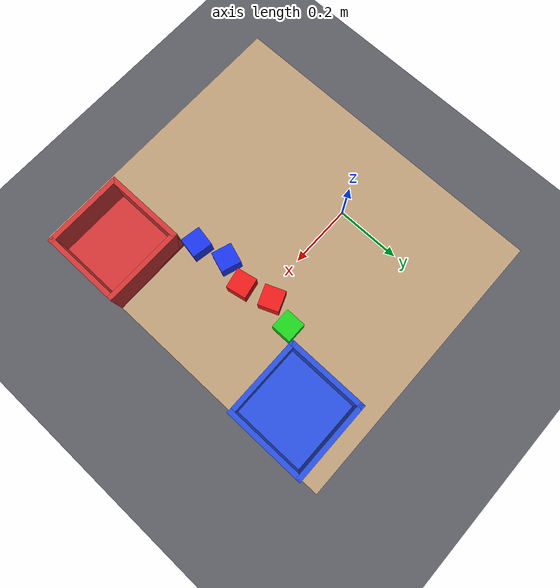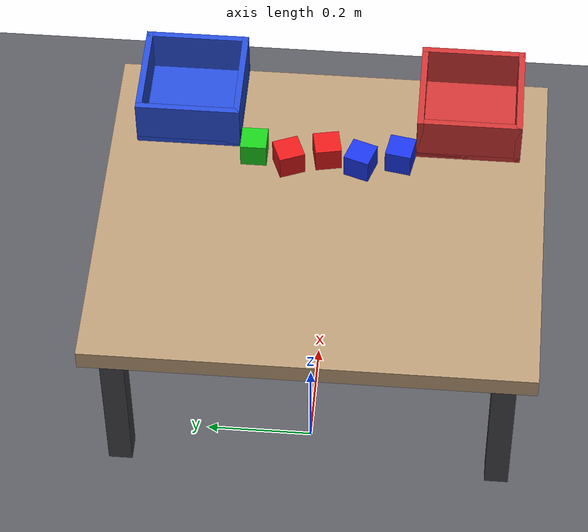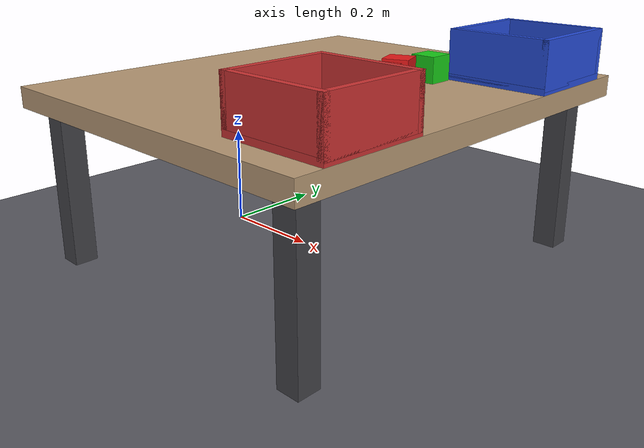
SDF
<?xml version='1.0' encoding='utf-8'?>
<sdf version="1.6">
  <world name="classify_world">
    <gui fullscreen="false">
      <camera name="user_camera">
        <pose>1.10 -0.95 1.15 0 0.51 2.283</pose>
        <view_controller>orbit</view_controller>
      </camera>
    </gui>
    <physics name="ode_physics" default="1" type="ode">
      <max_step_size>0.001</max_step_size>
      <real_time_update_rate>1000.0</real_time_update_rate>
      <real_time_factor>1.0</real_time_factor>
      <ode>
        <solver>
          <type>quick</type>
          <iters>100</iters>
          <sor>1.3</sor>
        </solver>
      </ode>
    </physics>
    <gravity>0 0 -9.81</gravity>
    <light name="sun" type="directional">
      <cast_shadows>true</cast_shadows>
      <pose>0 0 10 0 0 0</pose>
      <diffuse>0.8 0.8 0.8 1</diffuse>
      <specular>0.2 0.2 0.2 1</specular>
      <attenuation>
        <range>1000</range>
        <constant>0.9</constant>
        <linear>0.01</linear>
        <quadratic>0.001</quadratic>
      </attenuation>
      <direction>-0.4 0.3 -0.9</direction>
    </light>
    <model name="ground_plane">
      <static>true</static>
      <link name="ground_link">
        <collision name="ground_collision">
          <geometry>
            <plane>
              <normal>0 0 1</normal>
              <size>100 100</size>
            </plane>
          </geometry>
          <surface>
            <friction>
              <ode>
                <mu>1.0</mu>
                <mu2>1.0</mu2>
              </ode>
            </friction>
          </surface>
        </collision>
        <visual name="ground_visual">
          <geometry>
            <plane>
              <normal>0 0 1</normal>
              <size>100 100</size>
            </plane>
          </geometry>
          <material>
            <ambient>0.35 0.35 0.38 1</ambient>
            <diffuse>0.35 0.35 0.38 1</diffuse>
          </material>
        </visual>
      </link>
    </model>
    <model name="table">
      <static>true</static>
      <pose>0 0 0 0 0 -1.57079632679</pose>
      <link name="table_top_link">
        <pose>0 0.26 0.33 0 0 0</pose>
        <collision name="top_collision">
          <geometry>
            <box>
              <size>0.84 0.72 0.04</size>
            </box>
          </geometry>
        </collision>
        <visual name="top_visual">
          <geometry>
            <box>
              <size>0.84 0.72 0.04</size>
            </box>
          </geometry>
          <material>
            <ambient>0.72 0.60 0.46 1</ambient>
            <diffuse>0.72 0.60 0.46 1</diffuse>
          </material>
        </visual>
      </link>
      <link name="leg_near_left_link">
        <pose>-0.36 -0.06 0.155 0 0 0</pose>
        <visual name="leg_visual">
          <geometry>
            <box>
              <size>0.045 0.045 0.31</size>
            </box>
          </geometry>
          <material>
            <ambient>0.26 0.26 0.28 1</ambient>
            <diffuse>0.26 0.26 0.28 1</diffuse>
          </material>
        </visual>
        <collision name="leg_collision">
          <geometry>
            <box>
              <size>0.045 0.045 0.31</size>
            </box>
          </geometry>
        </collision>
      </link>
      <link name="leg_near_right_link">
        <pose>0.36 -0.06 0.155 0 0 0</pose>
        <visual name="leg_visual">
          <geometry>
            <box>
              <size>0.045 0.045 0.31</size>
            </box>
          </geometry>
          <material>
            <ambient>0.26 0.26 0.28 1</ambient>
            <diffuse>0.26 0.26 0.28 1</diffuse>
          </material>
        </visual>
        <collision name="leg_collision">
          <geometry>
            <box>
              <size>0.045 0.045 0.31</size>
            </box>
          </geometry>
        </collision>
      </link>
      <link name="leg_far_left_link">
        <pose>-0.36 0.56 0.155 0 0 0</pose>
        <visual name="leg_visual">
          <geometry>
            <box>
              <size>0.045 0.045 0.31</size>
            </box>
          </geometry>
          <material>
            <ambient>0.26 0.26 0.28 1</ambient>
            <diffuse>0.26 0.26 0.28 1</diffuse>
          </material>
        </visual>
        <collision name="leg_collision">
          <geometry>
            <box>
              <size>0.045 0.045 0.31</size>
            </box>
          </geometry>
        </collision>
      </link>
      <link name="leg_far_right_link">
        <pose>0.36 0.56 0.155 0 0 0</pose>
        <visual name="leg_visual">
          <geometry>
            <box>
              <size>0.045 0.045 0.31</size>
            </box>
          </geometry>
          <material>
            <ambient>0.26 0.26 0.28 1</ambient>
            <diffuse>0.26 0.26 0.28 1</diffuse>
          </material>
        </visual>
        <collision name="leg_collision">
          <geometry>
            <box>
              <size>0.045 0.045 0.31</size>
            </box>
          </geometry>
        </collision>
      </link>
    </model>
    <model name="red_block">
      <static>false</static>
      <pose>0.4000717640086134 -0.00026862216617482893 0.375 0 0 0.19401076211924653</pose>
      <link name="link">
        <inertial>
          <mass>0.1</mass>
          <inertia>
            <ixx>8.4e-05</ixx>
            <iyy>8.4e-05</iyy>
            <izz>8.4e-05</izz>
            <ixy>0</ixy>
            <ixz>0</ixz>
            <iyz>0</iyz>
          </inertia>
        </inertial>
        <collision name="collision">
          <geometry>
            <box>
              <size>0.05 0.05 0.05</size>
            </box>
          </geometry>
        </collision>
        <visual name="visual">
          <geometry>
            <box>
              <size>0.05 0.05 0.05</size>
            </box>
          </geometry>
          <material>
            <ambient>0.90 0.10 0.10 1</ambient>
            <diffuse>0.90 0.10 0.10 1</diffuse>
          </material>
        </visual>
      </link>
    </model>
    <model name="green_block">
      <static>false</static>
      <pose>0.4 0.14 0.375 0 0 -1.57079632679</pose>
      <link name="link">
        <inertial>
          <mass>0.1</mass>
          <inertia>
            <ixx>8.4e-05</ixx>
            <iyy>8.4e-05</iyy>
            <izz>8.4e-05</izz>
            <ixy>0</ixy>
            <ixz>0</ixz>
            <iyz>0</iyz>
          </inertia>
        </inertial>
        <collision name="collision">
          <geometry>
            <box>
              <size>0.05 0.05 0.05</size>
            </box>
          </geometry>
        </collision>
        <visual name="visual">
          <geometry>
            <box>
              <size>0.05 0.05 0.05</size>
            </box>
          </geometry>
          <material>
            <ambient>0.10 0.80 0.10 1</ambient>
            <diffuse>0.10 0.80 0.10 1</diffuse>
          </material>
        </visual>
      </link>
    </model>
    <model name="blue_block">
      <static>false</static>
      <pose>0.4000148714663789 -0.14092500868311605 0.375 0 0 -0.17684912778543543</pose>
      <link name="link">
        <inertial>
          <mass>0.1</mass>
          <inertia>
            <ixx>8.4e-05</ixx>
            <iyy>8.4e-05</iyy>
            <izz>8.4e-05</izz>
            <ixy>0</ixy>
            <ixz>0</ixz>
            <iyz>0</iyz>
          </inertia>
        </inertial>
        <collision name="collision">
          <geometry>
            <box>
              <size>0.05 0.05 0.05</size>
            </box>
          </geometry>
        </collision>
        <visual name="visual">
          <geometry>
            <box>
              <size>0.05 0.05 0.05</size>
            </box>
          </geometry>
          <material>
            <ambient>0.10 0.20 0.90 1</ambient>
            <diffuse>0.10 0.20 0.90 1</diffuse>
          </material>
        </visual>
      </link>
    </model>
    <model name="bin_red">
      <static>true</static>
      <pose>.52 -0.27 .35 0 0 -1.5707963267948966</pose>
      <link name="link">
        <collision name="collision_floor">
          <pose>0.0 0.0 0.006 0.0 0.0 0.0</pose>
          <geometry>
            <box>
              <size>0.2 0.2 0.012</size>
            </box>
          </geometry>
        </collision>
        <collision name="collision_south">
          <pose>0.0 -0.094 0.051 0.0 0.0 0.0</pose>
          <geometry>
            <box>
              <size>0.2 0.012 0.09</size>
            </box>
          </geometry>
        </collision>
        <collision name="collision_north">
          <pose>0.0 0.094 0.051 0.0 0.0 0.0</pose>
          <geometry>
            <box>
              <size>0.2 0.012 0.09</size>
            </box>
          </geometry>
        </collision>
        <collision name="collision_east">
          <pose>0.094 0.0 0.051 0.0 0.0 0.0</pose>
          <geometry>
            <box>
              <size>0.012 0.2 0.09</size>
            </box>
          </geometry>
        </collision>
        <collision name="collision_west">
          <pose>-0.094 0.0 0.051 0.0 0.0 0.0</pose>
          <geometry>
            <box>
              <size>0.012 0.2 0.09</size>
            </box>
          </geometry>
        </collision>
        <visual name="visual_floor">
          <pose>0.0 0.0 0.006 0.0 0.0 0.0</pose>
          <geometry>
            <box>
              <size>0.2 0.2 0.012</size>
            </box>
          </geometry>
          <material>
            <ambient>0.80 0.20 0.20 1</ambient>
            <diffuse>0.80 0.20 0.20 1</diffuse>
          </material>
        </visual>
        <visual name="visual_south">
          <pose>0.0 -0.094 0.051 0.0 0.0 0.0</pose>
          <geometry>
            <box>
              <size>0.2 0.012 0.09</size>
            </box>
          </geometry>
          <material>
            <ambient>0.80 0.20 0.20 1</ambient>
            <diffuse>0.80 0.20 0.20 1</diffuse>
          </material>
        </visual>
        <visual name="visual_north">
          <pose>0.0 0.094 0.051 0.0 0.0 0.0</pose>
          <geometry>
            <box>
              <size>0.2 0.012 0.09</size>
            </box>
          </geometry>
          <material>
            <ambient>0.80 0.20 0.20 1</ambient>
            <diffuse>0.80 0.20 0.20 1</diffuse>
          </material>
        </visual>
        <visual name="visual_east">
          <pose>0.094 0.0 0.051 0.0 0.0 0.0</pose>
          <geometry>
            <box>
              <size>0.012 0.2 0.09</size>
            </box>
          </geometry>
          <material>
            <ambient>0.80 0.20 0.20 1</ambient>
            <diffuse>0.80 0.20 0.20 1</diffuse>
          </material>
        </visual>
        <visual name="visual_west">
          <pose>-0.094 0.0 0.051 0.0 0.0 0.0</pose>
          <geometry>
            <box>
              <size>0.012 0.2 0.09</size>
            </box>
          </geometry>
          <material>
            <ambient>0.80 0.20 0.20 1</ambient>
            <diffuse>0.80 0.20 0.20 1</diffuse>
          </material>
        </visual>
      </link>
    </model>
    <model name="bin_blue">
      <static>true</static>
      <pose>.52 0.27 .35 0 0 -1.5707963267948966</pose>
      <link name="link">
        <collision name="collision_floor">
          <pose>0.0 0.0 0.006 0.0 0.0 0.0</pose>
          <geometry>
            <box>
              <size>0.2 0.2 0.012</size>
            </box>
          </geometry>
        </collision>
        <collision name="collision_south">
          <pose>0.0 -0.094 0.051 0.0 0.0 0.0</pose>
          <geometry>
            <box>
              <size>0.2 0.012 0.09</size>
            </box>
          </geometry>
        </collision>
        <collision name="collision_north">
          <pose>0.0 0.094 0.051 0.0 0.0 0.0</pose>
          <geometry>
            <box>
              <size>0.2 0.012 0.09</size>
            </box>
          </geometry>
        </collision>
        <collision name="collision_east">
          <pose>0.094 0.0 0.051 0.0 0.0 0.0</pose>
          <geometry>
            <box>
              <size>0.012 0.2 0.09</size>
            </box>
          </geometry>
        </collision>
        <collision name="collision_west">
          <pose>-0.094 0.0 0.051 0.0 0.0 0.0</pose>
          <geometry>
            <box>
              <size>0.012 0.2 0.09</size>
            </box>
          </geometry>
        </collision>
        <visual name="visual_floor">
          <pose>0.0 0.0 0.006 0.0 0.0 0.0</pose>
          <geometry>
            <box>
              <size>0.2 0.2 0.012</size>
            </box>
          </geometry>
          <material>
            <ambient>0.15 0.30 0.85 1</ambient>
            <diffuse>0.15 0.30 0.85 1</diffuse>
          </material>
        </visual>
        <visual name="visual_south">
          <pose>0.0 -0.094 0.051 0.0 0.0 0.0</pose>
          <geometry>
            <box>
              <size>0.2 0.012 0.09</size>
            </box>
          </geometry>
          <material>
            <ambient>0.15 0.30 0.85 1</ambient>
            <diffuse>0.15 0.30 0.85 1</diffuse>
          </material>
        </visual>
        <visual name="visual_north">
          <pose>0.0 0.094 0.051 0.0 0.0 0.0</pose>
          <geometry>
            <box>
              <size>0.2 0.012 0.09</size>
            </box>
          </geometry>
          <material>
            <ambient>0.15 0.30 0.85 1</ambient>
            <diffuse>0.15 0.30 0.85 1</diffuse>
          </material>
        </visual>
        <visual name="visual_east">
          <pose>0.094 0.0 0.051 0.0 0.0 0.0</pose>
          <geometry>
            <box>
              <size>0.012 0.2 0.09</size>
            </box>
          </geometry>
          <material>
            <ambient>0.15 0.30 0.85 1</ambient>
            <diffuse>0.15 0.30 0.85 1</diffuse>
          </material>
        </visual>
        <visual name="visual_west">
          <pose>-0.094 0.0 0.051 0.0 0.0 0.0</pose>
          <geometry>
            <box>
              <size>0.012 0.2 0.09</size>
            </box>
          </geometry>
          <material>
            <ambient>0.15 0.30 0.85 1</ambient>
            <diffuse>0.15 0.30 0.85 1</diffuse>
          </material>
        </visual>
      </link>
    </model>
    <plugin name="classify_entity_state" filename="libgazebo_ros_state.so">
      <ros>
        <namespace>/gazebo</namespace>
      </ros>
      <update_rate>30.0</update_rate>
    </plugin>
    <scene>
      <ambient>0.4 0.4 0.4 1</ambient>
      <background>0.7 0.7 0.7 1</background>
      <shadows>true</shadows>
    </scene>
    <model name="red_block_2">
      <static>false</static>
      <pose>0.37913971084714926 0.07218142602668773 0.375 0 0 0.38133765809567605</pose>
      <link name="link">
        <inertial>
          <mass>0.1</mass>
          <inertia>
            <ixx>8.4e-05</ixx>
            <iyy>8.4e-05</iyy>
            <izz>8.4e-05</izz>
            <ixy>0</ixy>
            <ixz>0</ixz>
            <iyz>0</iyz>
          </inertia>
        </inertial>
        <collision name="collision">
          <geometry>
            <box>
              <size>0.05 0.05 0.05</size>
            </box>
          </geometry>
        </collision>
        <visual name="visual">
          <geometry>
            <box>
              <size>0.05 0.05 0.05</size>
            </box>
          </geometry>
          <material>
            <ambient>0.90 0.10 0.10 1</ambient>
            <diffuse>0.90 0.10 0.10 1</diffuse>
          </material>
        </visual>
      </link>
    </model>
    <model name="blue_block_2">
      <static>false</static>
      <pose>0.3806537042493441 -0.06575239607770071 0.375 0 0 -0.3238200479766516</pose>
      <link name="link">
        <inertial>
          <mass>0.1</mass>
          <inertia>
            <ixx>8.4e-05</ixx>
            <iyy>8.4e-05</iyy>
            <izz>8.4e-05</izz>
            <ixy>0</ixy>
            <ixz>0</ixz>
            <iyz>0</iyz>
          </inertia>
        </inertial>
        <collision name="collision">
          <geometry>
            <box>
              <size>0.05 0.05 0.05</size>
            </box>
          </geometry>
        </collision>
        <visual name="visual">
          <geometry>
            <box>
              <size>0.05 0.05 0.05</size>
            </box>
          </geometry>
          <material>
            <ambient>0.10 0.20 0.90 1</ambient>
            <diffuse>0.10 0.20 0.90 1</diffuse>
          </material>
        </visual>
      </link>
    </model>
  </world>
</sdf>
